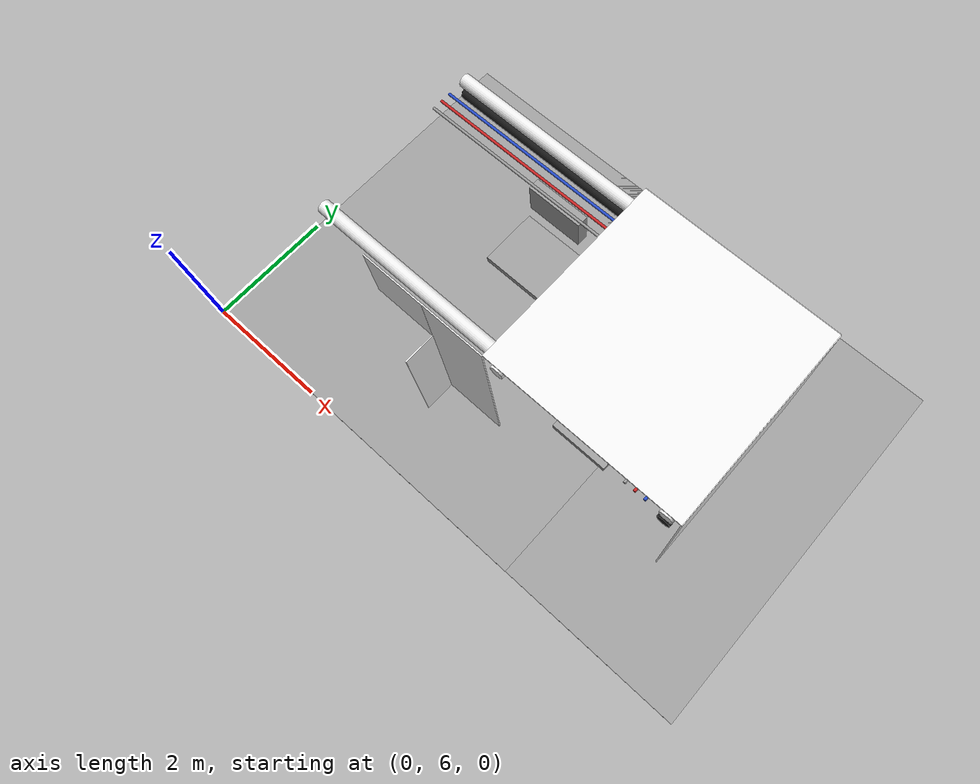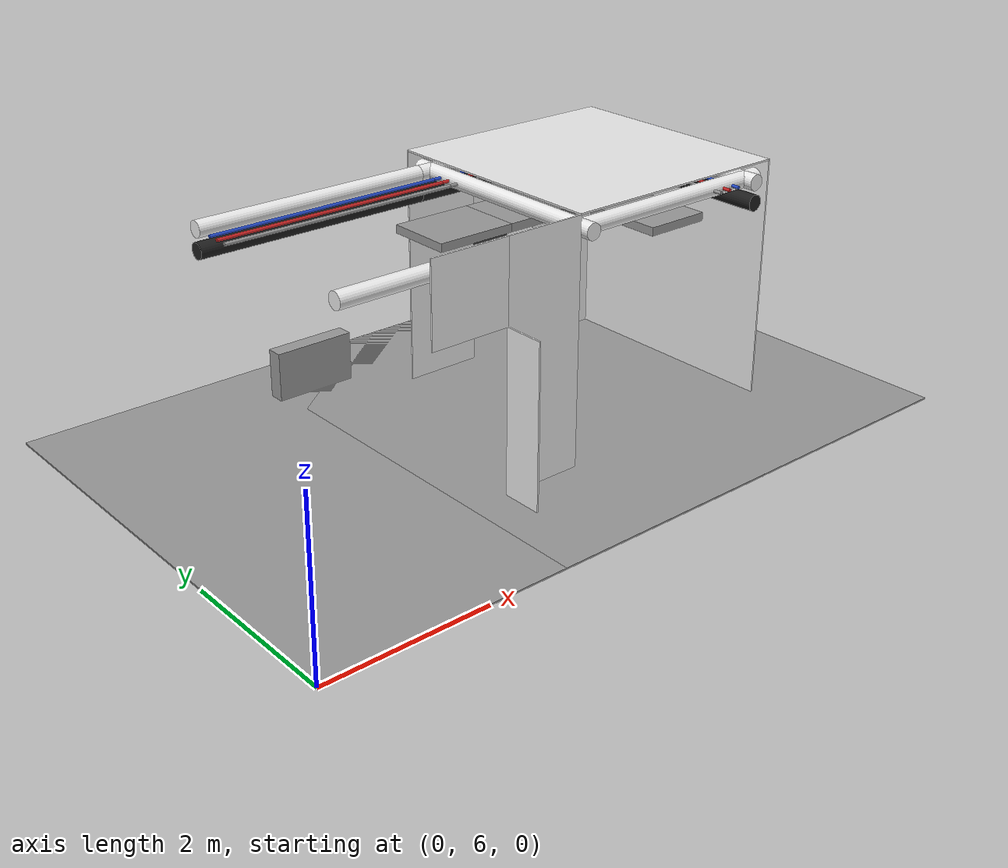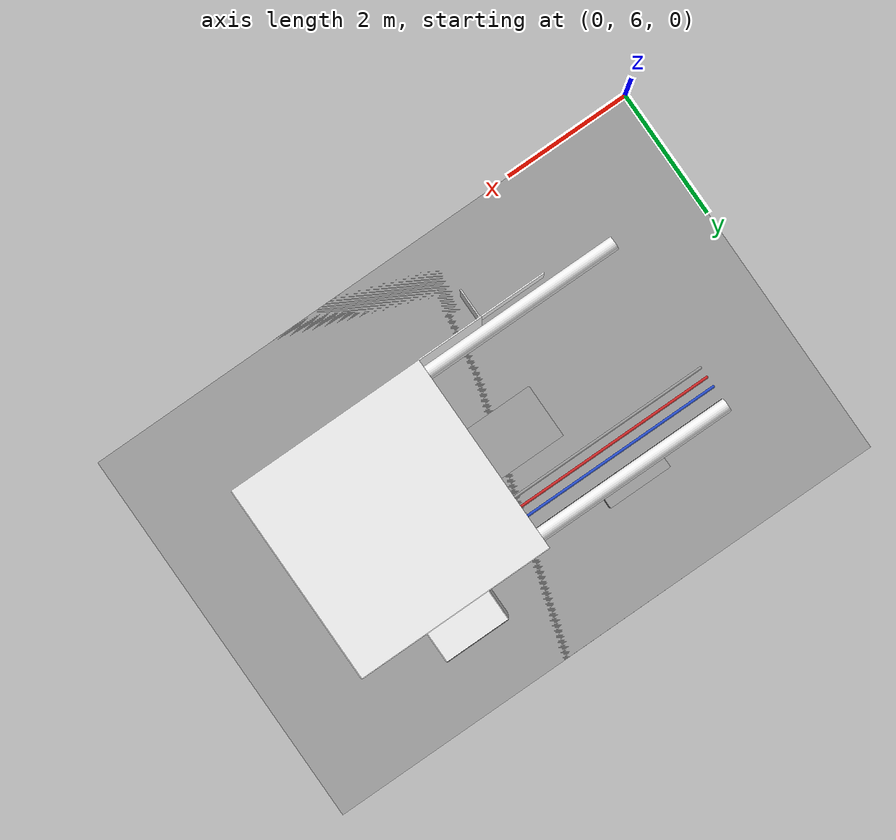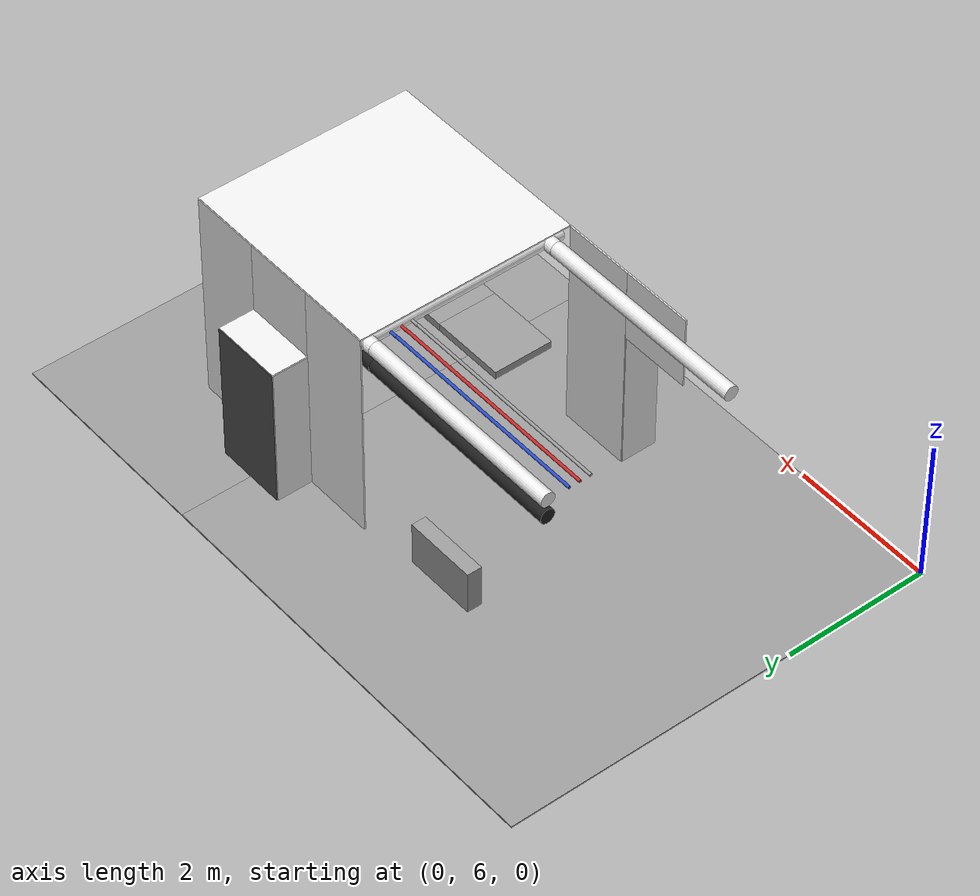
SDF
<sdf version="1.6">
 <world name="default">
  <model name="wall_right_2_3_0_3">
   <static>1</static>
   <pose>7.5 9.0 1.5 0.0 0.0 1.57</pose>
   <link name="link">
    <collision name="collision"><geometry><box><size>3.0 0.02 3.0</size></box></geometry></collision>
    <visual name="visual">
     <material>
      <script><name>Gazebo/White</name><uri>file://media/materials/scripts/gazebo.material</uri></script>
     </material>
     <geometry><box><size>3.0 0.02 3.0</size></box></geometry>
    </visual>
   </link>
  </model>
  <model name="wall_top_2_3_0_3">
   <static>1</static>
   <pose>6.0 9.0 3.0 1.57 0.0 0.0</pose>
   <link name="link">
    <collision name="collision"><geometry><box><size>3.0 0.02 3.0</size></box></geometry></collision>
    <visual name="visual">
     <material>
      <script><name>Gazebo/White</name><uri>file://media/materials/scripts/gazebo.material</uri></script>
     </material>
     <geometry><box><size>3.0 0.02 3.0</size></box></geometry>
    </visual>
   </link>
  </model>
  <model name="ceiling_1_2_3_0_3">
   <pose>6.0 8.0 2.55 0.0 0.0 0.0</pose>
   <link name="link_1">
    <visual name="visual">
     <geometry><box><size>0.8 1 0.1</size></box></geometry>
     <material>
      <script><uri>file://media/materials/scripts/gazebo.material</uri><name>Gazebo/Grey</name></script>
     </material>
    </visual>
    <collision name="collision"><geometry><box><size>0.8 1 0.1</size></box></geometry></collision>
   </link>
   <static>1</static>
  </model>
  <model name="ceiling_1_2_3_1_3">
   <pose>5.0 9.0 2.55 0.0 0.0 1.57</pose>
   <link name="link_1">
    <visual name="visual">
     <geometry><box><size>0.8 1 0.1</size></box></geometry>
     <material>
      <script><uri>file://media/materials/scripts/gazebo.material</uri><name>Gazebo/Grey</name></script>
     </material>
    </visual>
    <collision name="collision"><geometry><box><size>0.8 1 0.1</size></box></geometry></collision>
   </link>
   <static>1</static>
  </model>
  <model name="white_pipe_left_2_3_0_3">
   <static>1</static>
   <pose>6.0 9.0 2.76 0.0 0.0 0.0</pose>
   <link name="link_0">
    <visual name="visual">
     <pose>-1.3 0 0 1.57 0 0</pose>
     <geometry><cylinder><radius>0.1</radius><length>3.0</length></cylinder></geometry>
     <material>
      <script><uri>file://media/materials/scripts/gazebo.material</uri><name>Gazebo/White</name></script>
     </material>
    </visual>
    <collision name="collision">
     <pose>-1.3 0 0 1.57 0 0</pose>
     <geometry><cylinder><radius>0.1</radius><length>3.0</length></cylinder></geometry>
    </collision>
   </link>
  </model>
  <model name="white_pipe_right_2_3_0_3">
   <static>1</static>
   <pose>6.0 9.0 2.76 0.0 0.0 0.0</pose>
   <link name="link_0">
    <visual name="visual">
     <pose>1.3 0 0 1.57 0 0</pose>
     <geometry><cylinder><radius>0.1</radius><length>3.0</length></cylinder></geometry>
     <material>
      <script><uri>file://media/materials/scripts/gazebo.material</uri><name>Gazebo/White</name></script>
     </material>
    </visual>
    <collision name="collision">
     <pose>1.3 0 0 1.57 0 0</pose>
     <geometry><cylinder><radius>0.1</radius><length>3.0</length></cylinder></geometry>
    </collision>
   </link>
  </model>
  <model name="black_pipe_right_2_3_0_3">
   <static>1</static>
   <pose>6.0 9.0 2.76 0.0 0.0 0.0</pose>
   <link name="link_0">
    <visual name="visual">
     <pose>1.3 0 -0.25 1.57 0 0</pose>
     <geometry><cylinder><radius>0.1</radius><length>3.0</length></cylinder></geometry>
     <material>
      <script><uri>file://media/materials/scripts/gazebo.material</uri><name>Gazebo/Black</name></script>
     </material>
    </visual>
    <collision name="collision">
     <pose>1.3 0 -0.25 1.57 0 0</pose>
     <geometry><cylinder><radius>0.1</radius><length>3.0</length></cylinder></geometry>
    </collision>
   </link>
  </model>
  <model name="grey_pipe_right_2_3_0_3">
   <static>1</static>
   <pose>6.0 9.0 2.76 0.0 0.0 0.0</pose>
   <link name="link_0">
    <visual name="visual">
     <pose>0.7 0 0 1.57 0 0</pose>
     <geometry><cylinder><radius>0.02</radius><length>3.0</length></cylinder></geometry>
     <material>
      <script><uri>file://media/materials/scripts/gazebo.material</uri><name>Gazebo/Grey</name></script>
     </material>
    </visual>
    <collision name="collision">
     <pose>0.7 0 0 1.57 0 0</pose>
     <geometry><cylinder><radius>0.02</radius><length>3.0</length></cylinder></geometry>
    </collision>
   </link>
  </model>
  <model name="red_pipe_right_2_3_0_3">
   <static>1</static>
   <pose>6.0 9.0 2.76 0.0 0.0 0.0</pose>
   <link name="link_0">
    <visual name="visual">
     <pose>0.85 0 0 1.57 0 0</pose>
     <geometry><cylinder><radius>0.02</radius><length>3.0</length></cylinder></geometry>
     <material>
      <script><uri>file://media/materials/scripts/gazebo.material</uri><name>Gazebo/Red</name></script>
     </material>
    </visual>
    <collision name="collision">
     <pose>0.85 0 0 1.57 0 0</pose>
     <geometry><cylinder><radius>0.02</radius><length>3.0</length></cylinder></geometry>
    </collision>
   </link>
  </model>
  <model name="blue_pipe_right_2_3_0_3">
   <static>1</static>
   <pose>6.0 9.0 2.76 0.0 0.0 0.0</pose>
   <link name="link_0">
    <visual name="visual">
     <pose>1 0 0 1.57 0 0</pose>
     <geometry><cylinder><radius>0.02</radius><length>3.0</length></cylinder></geometry>
     <material>
      <script><uri>file://media/materials/scripts/gazebo.material</uri><name>Gazebo/Blue</name></script>
     </material>
    </visual>
    <collision name="collision">
     <pose>1 0 0 1.57 0 0</pose>
     <geometry><cylinder><radius>0.02</radius><length>3.0</length></cylinder></geometry>
    </collision>
   </link>
  </model>
  <model name="white_pipe_left_1_2_3_0_3">
   <static>1</static>
   <pose>6.0 9.0 2.76 0.0 0.0 1.57</pose>
   <link name="link_0">
    <visual name="visual">
     <pose>-1.3 0 0 1.57 0 0</pose>
     <geometry><cylinder><radius>0.1</radius><length>3.0</length></cylinder></geometry>
     <material>
      <script><uri>file://media/materials/scripts/gazebo.material</uri><name>Gazebo/White</name></script>
     </material>
    </visual>
    <collision name="collision">
     <pose>-1.3 0 0 1.57 0 0</pose>
     <geometry><cylinder><radius>0.1</radius><length>3.0</length></cylinder></geometry>
    </collision>
   </link>
  </model>
  <model name="white_pipe_right_1_2_3_0_3">
   <static>1</static>
   <pose>6.0 9.0 2.76 0.0 0.0 1.57</pose>
   <link name="link_0">
    <visual name="visual">
     <pose>1.3 0 0 1.57 0 0</pose>
     <geometry><cylinder><radius>0.1</radius><length>3.0</length></cylinder></geometry>
     <material>
      <script><uri>file://media/materials/scripts/gazebo.material</uri><name>Gazebo/White</name></script>
     </material>
    </visual>
    <collision name="collision">
     <pose>1.3 0 0 1.57 0 0</pose>
     <geometry><cylinder><radius>0.1</radius><length>3.0</length></cylinder></geometry>
    </collision>
   </link>
  </model>
  <model name="black_pipe_right_1_2_3_0_3">
   <static>1</static>
   <pose>6.0 9.0 2.76 0.0 0.0 1.57</pose>
   <link name="link_0">
    <visual name="visual">
     <pose>1.3 0 -0.25 1.57 0 0</pose>
     <geometry><cylinder><radius>0.1</radius><length>3.0</length></cylinder></geometry>
     <material>
      <script><uri>file://media/materials/scripts/gazebo.material</uri><name>Gazebo/Black</name></script>
     </material>
    </visual>
    <collision name="collision">
     <pose>1.3 0 -0.25 1.57 0 0</pose>
     <geometry><cylinder><radius>0.1</radius><length>3.0</length></cylinder></geometry>
    </collision>
   </link>
  </model>
  <model name="grey_pipe_right_1_2_3_0_3">
   <static>1</static>
   <pose>6.0 9.0 2.76 0.0 0.0 1.57</pose>
   <link name="link_0">
    <visual name="visual">
     <pose>0.7 0 0 1.57 0 0</pose>
     <geometry><cylinder><radius>0.02</radius><length>3.0</length></cylinder></geometry>
     <material>
      <script><uri>file://media/materials/scripts/gazebo.material</uri><name>Gazebo/Grey</name></script>
     </material>
    </visual>
    <collision name="collision">
     <pose>0.7 0 0 1.57 0 0</pose>
     <geometry><cylinder><radius>0.02</radius><length>3.0</length></cylinder></geometry>
    </collision>
   </link>
  </model>
  <model name="red_pipe_right_1_2_3_0_3">
   <static>1</static>
   <pose>6.0 9.0 2.76 0.0 0.0 1.57</pose>
   <link name="link_0">
    <visual name="visual">
     <pose>0.85 0 0 1.57 0 0</pose>
     <geometry><cylinder><radius>0.02</radius><length>3.0</length></cylinder></geometry>
     <material>
      <script><uri>file://media/materials/scripts/gazebo.material</uri><name>Gazebo/Red</name></script>
     </material>
    </visual>
    <collision name="collision">
     <pose>0.85 0 0 1.57 0 0</pose>
     <geometry><cylinder><radius>0.02</radius><length>3.0</length></cylinder></geometry>
    </collision>
   </link>
  </model>
  <model name="blue_pipe_right_1_2_3_0_3">
   <static>1</static>
   <pose>6.0 9.0 2.76 0.0 0.0 1.57</pose>
   <link name="link_0">
    <visual name="visual">
     <pose>1 0 0 1.57 0 0</pose>
     <geometry><cylinder><radius>0.02</radius><length>3.0</length></cylinder></geometry>
     <material>
      <script><uri>file://media/materials/scripts/gazebo.material</uri><name>Gazebo/Blue</name></script>
     </material>
    </visual>
    <collision name="collision">
     <pose>1 0 0 1.57 0 0</pose>
     <geometry><cylinder><radius>0.02</radius><length>3.0</length></cylinder></geometry>
    </collision>
   </link>
  </model>
  <model name="wall_front_front_left_2_3_0_3">
   <static>1</static>
   <pose>7.0 10.5 1.5 0.0 0.0 0.0</pose>
   <link name="link">
    <collision name="collision"><geometry><box><size>1.0 0.02 3.0</size></box></geometry></collision>
    <visual name="visual">
     <material>
      <script><name>Gazebo/White</name><uri>file://media/materials/scripts/gazebo.material</uri></script>
     </material>
     <geometry><box><size>1.0 0.02 3.0</size></box></geometry>
    </visual>
   </link>
  </model>
  <model name="wall_front_front_right_2_3_0_3">
   <static>1</static>
   <pose>5.0 10.5 1.5 0.0 0.0 0.0</pose>
   <link name="link">
    <collision name="collision"><geometry><box><size>1.0 0.02 3.0</size></box></geometry></collision>
    <visual name="visual">
     <material>
      <script><name>Gazebo/White</name><uri>file://media/materials/scripts/gazebo.material</uri></script>
     </material>
     <geometry><box><size>1.0 0.02 3.0</size></box></geometry>
    </visual>
   </link>
  </model>
  <model name="wall_front_front_up_2_3_0_3">
   <static>1</static>
   <pose>6.0 10.5 2.5 0.0 0.0 0.0</pose>
   <link name="link">
    <collision name="collision"><geometry><box><size>1.0 0.02 1.0</size></box></geometry></collision>
    <visual name="visual">
     <material>
      <script><name>Gazebo/White</name><uri>file://media/materials/scripts/gazebo.material</uri></script>
     </material>
     <geometry><box><size>1.0 0.02 1.0</size></box></geometry>
    </visual>
   </link>
  </model>
  <model name="wall_front_inside_back_2_3_0_3">
   <static>1</static>
   <pose>6.0 11.0 1.0 0.0 0.0 0.0</pose>
   <link name="link">
    <collision name="collision"><geometry><box><size>1 0.02 2</size></box></geometry></collision>
    <visual name="visual">
     <material>
      <script><name>Gazebo/DarkGrey</name><uri>file://media/materials/scripts/gazebo.material</uri></script>
     </material>
     <geometry><box><size>1 0.02 2</size></box></geometry>
    </visual>
   </link>
  </model>
  <model name="wall_front_inside_left_2_3_0_3">
   <static>1</static>
   <pose>5.5 10.75 1.0 0.0 0.0 1.57</pose>
   <link name="link">
    <collision name="collision"><geometry><box><size>0.5 0.02 2</size></box></geometry></collision>
    <visual name="visual">
     <material>
      <script><name>Gazebo/White</name><uri>file://media/materials/scripts/gazebo.material</uri></script>
     </material>
     <geometry><box><size>0.5 0.02 2</size></box></geometry>
    </visual>
   </link>
  </model>
  <model name="wall_front_inside_right_2_3_0_3">
   <static>1</static>
   <pose>6.5 10.75 1.0 0.0 0.0 1.57</pose>
   <link name="link">
    <collision name="collision"><geometry><box><size>0.5 0.02 2</size></box></geometry></collision>
    <visual name="visual">
     <material>
      <script><name>Gazebo/White</name><uri>file://media/materials/scripts/gazebo.material</uri></script>
     </material>
     <geometry><box><size>0.5 0.02 2</size></box></geometry>
    </visual>
   </link>
  </model>
  <model name="wall_front_inside_top_2_3_0_3">
   <static>1</static>
   <pose>6.0 10.75 2.0 1.57 0.0 0.0</pose>
   <link name="link">
    <collision name="collision"><geometry><box><size>1 0.02 0.5</size></box></geometry></collision>
    <visual name="visual">
     <material>
      <script><name>Gazebo/White</name><uri>file://media/materials/scripts/gazebo.material</uri></script>
     </material>
     <geometry><box><size>1 0.02 0.5</size></box></geometry>
    </visual>
   </link>
  </model>
  <model name="wall_bottom_2_3_0_3">
   <static>1</static>
   <pose>6.0 9.0 0.0 0.0 0.0 0.0</pose>
   <link name="link">
    <collision name="collision"><geometry><box><size>6.0 6.0 0.02</size></box></geometry></collision>
    <visual name="visual">
     <material>
      <script><name>Gazebo/Grey</name><uri>file://media/materials/scripts/gazebo.material</uri></script>
     </material>
     <geometry><box><size>6.0 6.0 0.02</size></box></geometry>
    </visual>
   </link>
  </model>
  <model name="ceiling_1_1_3_1_1">
   <pose>4.0 9.0 2.55 0.0 0.0 1.57</pose>
   <link name="link_1">
    <visual name="visual">
     <geometry><box><size>0.8 1 0.1</size></box></geometry>
     <material>
      <script><uri>file://media/materials/scripts/gazebo.material</uri><name>Gazebo/Grey</name></script>
     </material>
    </visual>
    <collision name="collision"><geometry><box><size>0.8 1 0.1</size></box></geometry></collision>
   </link>
   <static>1</static>
  </model>
  <model name="white_pipe_left_1_3_0_1">
   <static>1</static>
   <pose>3.0 9.0 2.76 0.0 0.0 1.57</pose>
   <link name="link_0">
    <visual name="visual">
     <pose>-1.3 0 0 1.57 0 0</pose>
     <geometry><cylinder><radius>0.1</radius><length>3.0</length></cylinder></geometry>
     <material>
      <script><uri>file://media/materials/scripts/gazebo.material</uri><name>Gazebo/White</name></script>
     </material>
    </visual>
    <collision name="collision">
     <pose>-1.3 0 0 1.57 0 0</pose>
     <geometry><cylinder><radius>0.1</radius><length>3.0</length></cylinder></geometry>
    </collision>
   </link>
  </model>
  <model name="white_pipe_right_1_3_0_1">
   <static>1</static>
   <pose>3.0 9.0 2.76 0.0 0.0 1.57</pose>
   <link name="link_0">
    <visual name="visual">
     <pose>1.3 0 0 1.57 0 0</pose>
     <geometry><cylinder><radius>0.1</radius><length>3.0</length></cylinder></geometry>
     <material>
      <script><uri>file://media/materials/scripts/gazebo.material</uri><name>Gazebo/White</name></script>
     </material>
    </visual>
    <collision name="collision">
     <pose>1.3 0 0 1.57 0 0</pose>
     <geometry><cylinder><radius>0.1</radius><length>3.0</length></cylinder></geometry>
    </collision>
   </link>
  </model>
  <model name="black_pipe_right_1_3_0_1">
   <static>1</static>
   <pose>3.0 9.0 2.76 0.0 0.0 1.57</pose>
   <link name="link_0">
    <visual name="visual">
     <pose>1.3 0 -0.25 1.57 0 0</pose>
     <geometry><cylinder><radius>0.1</radius><length>3.0</length></cylinder></geometry>
     <material>
      <script><uri>file://media/materials/scripts/gazebo.material</uri><name>Gazebo/Black</name></script>
     </material>
    </visual>
    <collision name="collision">
     <pose>1.3 0 -0.25 1.57 0 0</pose>
     <geometry><cylinder><radius>0.1</radius><length>3.0</length></cylinder></geometry>
    </collision>
   </link>
  </model>
  <model name="grey_pipe_right_1_3_0_1">
   <static>1</static>
   <pose>3.0 9.0 2.76 0.0 0.0 1.57</pose>
   <link name="link_0">
    <visual name="visual">
     <pose>0.7 0 0 1.57 0 0</pose>
     <geometry><cylinder><radius>0.02</radius><length>3.0</length></cylinder></geometry>
     <material>
      <script><uri>file://media/materials/scripts/gazebo.material</uri><name>Gazebo/Grey</name></script>
     </material>
    </visual>
    <collision name="collision">
     <pose>0.7 0 0 1.57 0 0</pose>
     <geometry><cylinder><radius>0.02</radius><length>3.0</length></cylinder></geometry>
    </collision>
   </link>
  </model>
  <model name="red_pipe_right_1_3_0_1">
   <static>1</static>
   <pose>3.0 9.0 2.76 0.0 0.0 1.57</pose>
   <link name="link_0">
    <visual name="visual">
     <pose>0.85 0 0 1.57 0 0</pose>
     <geometry><cylinder><radius>0.02</radius><length>3.0</length></cylinder></geometry>
     <material>
      <script><uri>file://media/materials/scripts/gazebo.material</uri><name>Gazebo/Red</name></script>
     </material>
    </visual>
    <collision name="collision">
     <pose>0.85 0 0 1.57 0 0</pose>
     <geometry><cylinder><radius>0.02</radius><length>3.0</length></cylinder></geometry>
    </collision>
   </link>
  </model>
  <model name="blue_pipe_right_1_3_0_1">
   <static>1</static>
   <pose>3.0 9.0 2.76 0.0 0.0 1.57</pose>
   <link name="link_0">
    <visual name="visual">
     <pose>1 0 0 1.57 0 0</pose>
     <geometry><cylinder><radius>0.02</radius><length>3.0</length></cylinder></geometry>
     <material>
      <script><uri>file://media/materials/scripts/gazebo.material</uri><name>Gazebo/Blue</name></script>
     </material>
    </visual>
    <collision name="collision">
     <pose>1 0 0 1.57 0 0</pose>
     <geometry><cylinder><radius>0.02</radius><length>3.0</length></cylinder></geometry>
    </collision>
   </link>
  </model>
  <model name="wall_bottom_1_3_0_1">
   <static>1</static>
   <pose>3.0 9.0 0.0 0.0 0.0 1.57</pose>
   <link name="link">
    <collision name="collision"><geometry><box><size>6.0 6.0 0.02</size></box></geometry></collision>
    <visual name="visual">
     <material>
      <script><name>Gazebo/Grey</name><uri>file://media/materials/scripts/gazebo.material</uri></script>
     </material>
     <geometry><box><size>6.0 6.0 0.02</size></box></geometry>
    </visual>
   </link>
  </model>
  <model name="wall_left_front_right_1_3_0_1">
   <static>1</static>
   <pose>4.0 7.5 1.5 0.0 0.0 3.14</pose>
   <link name="link">
    <collision name="collision"><geometry><box><size>1.0 0.02 3.0</size></box></geometry></collision>
    <visual name="visual">
     <material>
      <script><name>Gazebo/White</name><uri>file://media/materials/scripts/gazebo.material</uri></script>
     </material>
     <geometry><box><size>1.0 0.02 3.0</size></box></geometry>
    </visual>
   </link>
  </model>
  <model name="wall_left_front_up_1_3_0_1">
   <static>1</static>
   <pose>3.0 7.5 2.5 0.0 0.0 3.14</pose>
   <link name="link">
    <collision name="collision"><geometry><box><size>1.0 0.02 1.0</size></box></geometry></collision>
    <visual name="visual">
     <material>
      <script><name>Gazebo/White</name><uri>file://media/materials/scripts/gazebo.material</uri></script>
     </material>
     <geometry><box><size>1.0 0.02 1.0</size></box></geometry>
    </visual>
   </link>
  </model>
  <model name="wall_left_inside_right_1_3_0_1">
   <static>1</static>
   <pose>3.5 7.25 1.0 0.0 0.0 1.57</pose>
   <link name="link">
    <collision name="collision"><geometry><box><size>0.5 0.02 2</size></box></geometry></collision>
    <visual name="visual">
     <material>
      <script><name>Gazebo/White</name><uri>file://media/materials/scripts/gazebo.material</uri></script>
     </material>
     <geometry><box><size>0.5 0.02 2</size></box></geometry>
    </visual>
   </link>
  </model>
  <model name="panel_1_3_0_1">
   <static>1</static>
   <pose>3.0 10.5 0.66 0.0 0.0 1.57</pose>
   <link name="link">
    <collision name="collision"><geometry><box><size>0.2 1 0.6</size></box></geometry></collision>
    <visual name="visual">
     <material>
      <script><name>Gazebo/Grey</name><uri>file://media/materials/scripts/gazebo.material</uri></script>
     </material>
     <geometry><box><size>0.2 1 0.6</size></box></geometry>
    </visual>
   </link>
  </model>
 </world>
</sdf>
